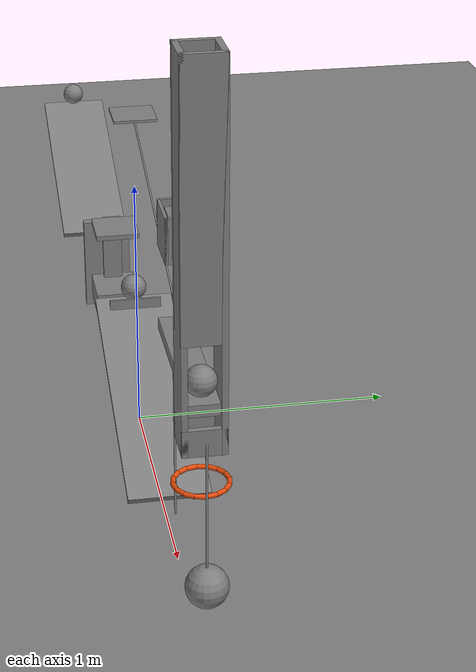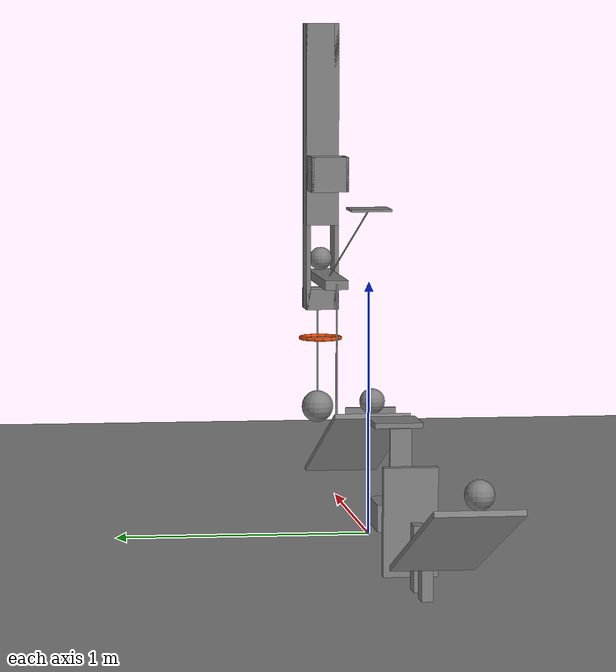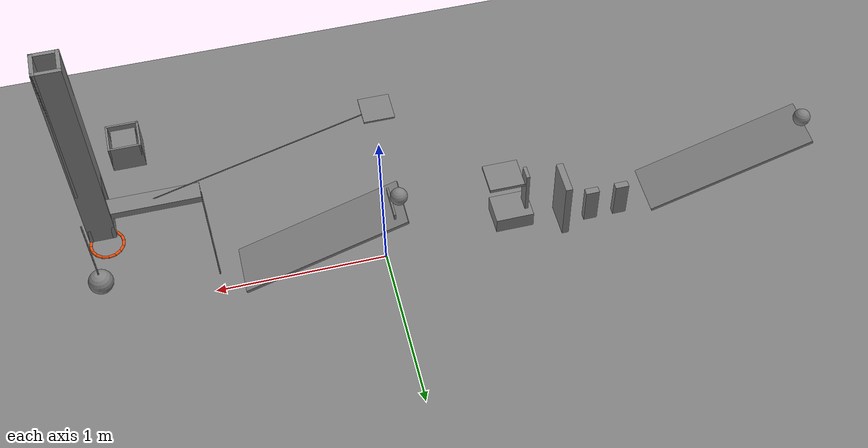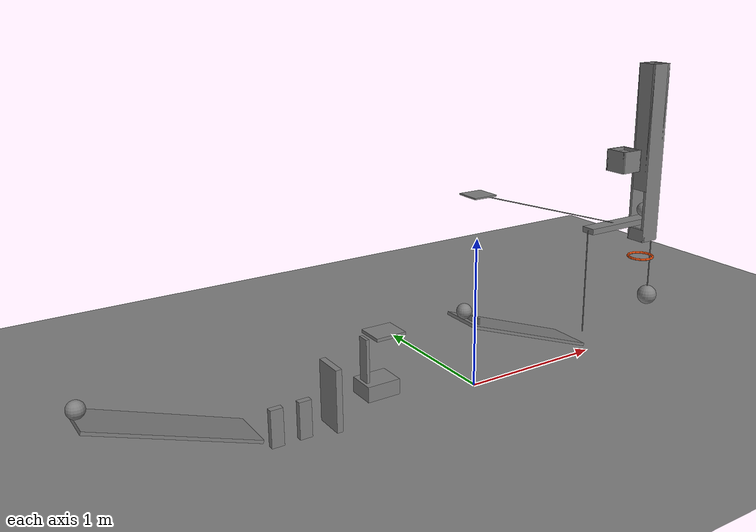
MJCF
<mujoco model="staged_gravity_chain">
  <compiler angle="radian"/>
  <option timestep="0.002"/>
  <worldbody>
    <geom name="floor" type="plane" size="12 12 0.1" friction="0.7 0 0"/>
    <body name="ramp1">
      <geom name="ramp1" type="box" pos="-2.03015 0 0.311613" size="0.5 0.15 0.01" euler="0 0.349066 0" friction="0.7 0 0" solref="0.01 0.690107"/>
    </body>
    <body name="ball1" pos="-2.47948 0 0.539005">
      <freejoint/>
      <geom name="ball1" type="sphere" pos="0 0 0" size="0.05" mass="0.2" condim="6" friction="0.7 0 0" solref="0.01 0.690107"/>
    </body>
    <body name="domino1" pos="-1.41689 0 0.12">
      <freejoint/>
      <geom name="domino1" type="box" pos="0 0 0" size="0.04 0.02 0.12" mass="0.25" friction="0.7 0 0" solref="0.01 0.690107"/>
    </body>
    <body name="domino2" pos="-1.23689 0 0.12">
      <freejoint/>
      <geom name="domino2" type="box" pos="0 0 0" size="0.04 0.02 0.12" mass="0.25" friction="0.7 0 0" solref="0.01 0.690107"/>
    </body>
    <body name="flap1" pos="-1.05689 0 0.02">
      <joint name="flap1_hinge" type="hinge" pos="0 0 0" axis="0 1 0" limited="true" range="0 1.13446" damping="0.04"/>
      <geom name="flap1" type="box" pos="0 0 0.2" size="0.02 0.1 0.2" mass="0.3" friction="0.7 0 0" solref="0.01 0.690107"/>
    </body>
    <body name="cart1" pos="-0.746887 0 0.2">
      <joint name="cart1_slide" type="slide" pos="0 0 0" axis="1 0 0" limited="true" range="0 0.58" damping="0.2"/>
      <geom name="cart1" type="box" pos="0 0 0" size="0.11 0.09 0.05" mass="0.5" friction="0.7 0 0" solref="0.01 0.690107"/>
      <geom name="cart1 pusher post" type="box" pos="-0.08 0 0.19" size="0.01 0.04 0.14" mass="0" friction="0.7 0 0" solref="0.01 0.690107"/>
      <geom name="cart1 pusher arm" type="box" pos="0.055 0 0.335" size="0.1 0.09 0.01" mass="0" friction="0.7 0 0" solref="0.01 0.690107"/>
    </body>
    <body name="ramp2">
      <geom name="ramp2" type="box" pos="0.357438 0 0.311613" size="0.5 0.15 0.01" euler="0 0.349066 0" friction="0.7 0 0" solref="0.01 0.690107"/>
    </body>
    <body name="ball2" pos="-0.0918872 0 0.539005">
      <freejoint/>
      <geom name="ball2" type="sphere" pos="0 0 0" size="0.05" mass="0.2" condim="6" friction="0.7 0 0" solref="0.01 0.690107"/>
    </body>
    <body name="ball2 retainer">
      <geom name="ball2 retainer" type="box" pos="-0.0468872 0 0.489005" size="0.005 0.1 0.02" friction="0.7 0 0" solref="0.01 0.690107"/>
    </body>
    <body name="lever1" pos="1.2547 0 0.9">
      <joint name="lever1_hinge" type="hinge" pos="0 0 0" axis="0 1 0" limited="true" range="-0.785398 0" stiffness="0.55" springref="-0.785398" damping="0.04"/>
      <geom name="lever1" type="box" pos="0 0 0" size="0.3 0.05 0.02" mass="0.5" friction="0.7 0 0" solref="0.01 0.690107"/>
      <geom name="lever1 striker" type="capsule" size="0.004" fromto="-0.3 0 0 -0.3 0 -0.74" mass="0" friction="0.7 0 0" solref="0.01 0.690107"/>
      <geom name="lever1 counterweight mast" type="capsule" size="0.003" fromto="0 0 0 -1.2547 0 0.385" mass="0" friction="0.7 0 0" solref="0.01 0.690107"/>
      <geom name="lever1 cradle base" type="box" pos="-1.2547 0 0.385" size="0.08 0.08 0.005" mass="0" friction="0.7 0 0" solref="0.01 0.690107"/>
      <geom name="lever1 cradle near wall" type="box" pos="-0.075 0 0.455" size="0.005 0.08 0.075" mass="0" friction="0.7 0 0" solref="0.01 0.690107"/>
      <geom name="lever1 cradle far wall" type="box" pos="0.075 0 0.455" size="0.005 0.08 0.075" mass="0" friction="0.7 0 0" solref="0.01 0.690107"/>
      <geom name="lever1 cradle left wall" type="box" pos="0 0.075 0.455" size="0.08 0.005 0.075" mass="0" friction="0.7 0 0" solref="0.01 0.690107"/>
      <geom name="lever1 cradle right wall" type="box" pos="0 -0.075 0.455" size="0.08 0.005 0.075" mass="0" friction="0.7 0 0" solref="0.01 0.690107"/>
    </body>
    <body name="counterweight" pos="1.2547 0 1.35">
      <freejoint/>
      <geom name="counterweight" type="box" pos="0 0 0" size="0.06 0.06 0.06" mass="0.35" friction="0.7 0 0" solref="0.01 0.690107"/>
    </body>
    <body name="ball3" pos="1.4947 0 0.97">
      <freejoint/>
      <geom name="ball3" type="sphere" pos="0 0 0" size="0.05" mass="0.2" condim="6" friction="0.7 0 0" solref="0.01 0.690107"/>
    </body>
    <body name="launch guide left">
      <geom name="launch guide left" type="box" pos="1.4947 0.061 1.375" size="0.071 0.01 0.625" friction="0.7 0 0" solref="0.01 0.690107"/>
    </body>
    <body name="launch guide right">
      <geom name="launch guide right" type="box" pos="1.4947 -0.061 1.375" size="0.071 0.01 0.625" friction="0.7 0 0" solref="0.01 0.690107"/>
    </body>
    <body name="launch guide near upper">
      <geom name="launch guide near upper" type="box" pos="1.4337 0 1.56" size="0.01 0.071 0.44" friction="0.7 0 0" solref="0.01 0.690107"/>
    </body>
    <body name="launch guide far upper">
      <geom name="launch guide far upper" type="box" pos="1.5557 0 1.56" size="0.01 0.071 0.44" friction="0.7 0 0" solref="0.01 0.690107"/>
    </body>
    <body name="launch guide near lower">
      <geom name="launch guide near lower" type="box" pos="1.4337 0 0.795" size="0.01 0.071 0.045" friction="0.7 0 0" solref="0.01 0.690107"/>
    </body>
    <body name="launch guide far lower">
      <geom name="launch guide far lower" type="box" pos="1.5557 0 0.795" size="0.01 0.071 0.045" friction="0.7 0 0" solref="0.01 0.690107"/>
    </body>
    <body name="ring1">
      <geom name="ring1_00" type="capsule" size="0.008" fromto="1.5827 0 0.62 1.57601 0.0336761 0.62" friction="0.7 0 0" solref="0.01 0.690107" rgba="0.9 0.3 0.05 1"/>
      <geom name="ring1_01" type="capsule" size="0.008" fromto="1.57601 0.0336761 0.62 1.55693 0.0622254 0.62" friction="0.7 0 0" solref="0.01 0.690107" rgba="0.9 0.3 0.05 1"/>
      <geom name="ring1_02" type="capsule" size="0.008" fromto="1.55693 0.0622254 0.62 1.52838 0.0813014 0.62" friction="0.7 0 0" solref="0.01 0.690107" rgba="0.9 0.3 0.05 1"/>
      <geom name="ring1_03" type="capsule" size="0.008" fromto="1.52838 0.0813014 0.62 1.4947 0.088 0.62" friction="0.7 0 0" solref="0.01 0.690107" rgba="0.9 0.3 0.05 1"/>
      <geom name="ring1_04" type="capsule" size="0.008" fromto="1.4947 0.088 0.62 1.46103 0.0813014 0.62" friction="0.7 0 0" solref="0.01 0.690107" rgba="0.9 0.3 0.05 1"/>
      <geom name="ring1_05" type="capsule" size="0.008" fromto="1.46103 0.0813014 0.62 1.43248 0.0622254 0.62" friction="0.7 0 0" solref="0.01 0.690107" rgba="0.9 0.3 0.05 1"/>
      <geom name="ring1_06" type="capsule" size="0.008" fromto="1.43248 0.0622254 0.62 1.4134 0.0336761 0.62" friction="0.7 0 0" solref="0.01 0.690107" rgba="0.9 0.3 0.05 1"/>
      <geom name="ring1_07" type="capsule" size="0.008" fromto="1.4134 0.0336761 0.62 1.4067 1.07769e-17 0.62" friction="0.7 0 0" solref="0.01 0.690107" rgba="0.9 0.3 0.05 1"/>
      <geom name="ring1_08" type="capsule" size="0.008" fromto="1.4067 1.07769e-17 0.62 1.4134 -0.0336761 0.62" friction="0.7 0 0" solref="0.01 0.690107" rgba="0.9 0.3 0.05 1"/>
      <geom name="ring1_09" type="capsule" size="0.008" fromto="1.4134 -0.0336761 0.62 1.43248 -0.0622254 0.62" friction="0.7 0 0" solref="0.01 0.690107" rgba="0.9 0.3 0.05 1"/>
      <geom name="ring1_10" type="capsule" size="0.008" fromto="1.43248 -0.0622254 0.62 1.46103 -0.0813014 0.62" friction="0.7 0 0" solref="0.01 0.690107" rgba="0.9 0.3 0.05 1"/>
      <geom name="ring1_11" type="capsule" size="0.008" fromto="1.46103 -0.0813014 0.62 1.4947 -0.088 0.62" friction="0.7 0 0" solref="0.01 0.690107" rgba="0.9 0.3 0.05 1"/>
      <geom name="ring1_12" type="capsule" size="0.008" fromto="1.4947 -0.088 0.62 1.52838 -0.0813014 0.62" friction="0.7 0 0" solref="0.01 0.690107" rgba="0.9 0.3 0.05 1"/>
      <geom name="ring1_13" type="capsule" size="0.008" fromto="1.52838 -0.0813014 0.62 1.55693 -0.0622254 0.62" friction="0.7 0 0" solref="0.01 0.690107" rgba="0.9 0.3 0.05 1"/>
      <geom name="ring1_14" type="capsule" size="0.008" fromto="1.55693 -0.0622254 0.62 1.57601 -0.0336761 0.62" friction="0.7 0 0" solref="0.01 0.690107" rgba="0.9 0.3 0.05 1"/>
      <geom name="ring1_15" type="capsule" size="0.008" fromto="1.57601 -0.0336761 0.62 1.5827 -2.15538e-17 0.62" friction="0.7 0 0" solref="0.01 0.690107" rgba="0.9 0.3 0.05 1"/>
    </body>
    <body name="pendulum1" pos="1.5947 0 0.803668">
      <joint name="pendulum1_hinge" type="hinge" pos="0 0 0" axis="0 1 0" limited="true" range="-1.5708 1.5708" damping="0.04"/>
      <geom name="pendulum1" type="sphere" pos="0 0 -0.5" size="0.07" mass="0.33" friction="0.7 0 0" solref="0.01 0.690107"/>
      <geom name="pendulum1 rod" type="capsule" size="0.004" fromto="0 0 0 0 0 -0.43" mass="0.02" friction="0.7 0 0" solref="0.01 0.690107"/>
    </body>
  </worldbody>
  <keyframe>
    <key name="start" qpos="-2.47948 0 0.539005 1 0 0 0 -1.41689 0 0.12 1 0 0 0 -1.23689 0 0.12 1 0 0 0 0 0 -0.0918872 0 0.539005 1 0 0 0 0 1.2547 0 1.35 1 0 0 0 1.4947 0 0.97 1 0 0 0 0" qvel="0 0 0 0 0 0 0 0 0 0 0 0 0 0 0 0 0 0 0 0 0 0 0 0 0 0 0 0 0 0 0 0 0 0 0 0 0 0 0 0"/>
  </keyframe>
</mujoco>
